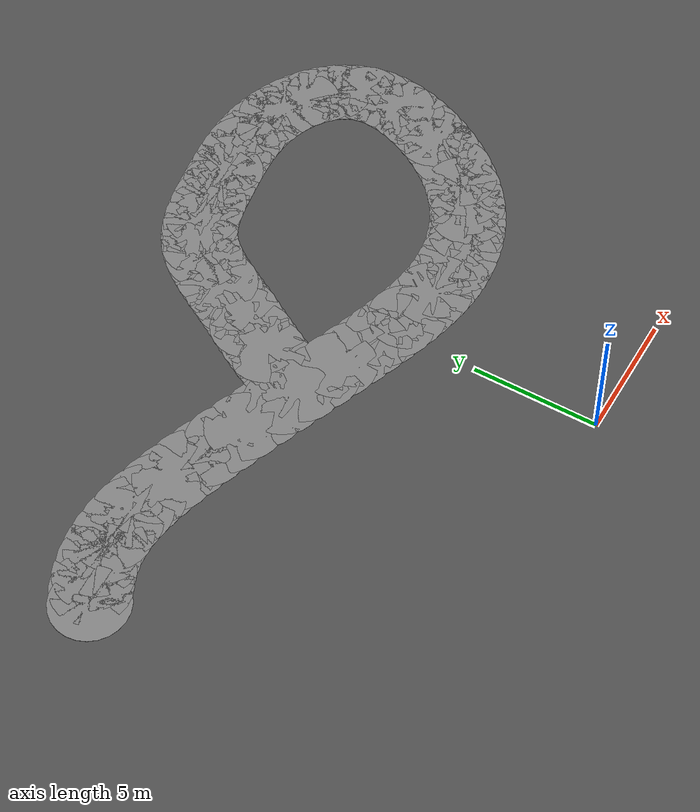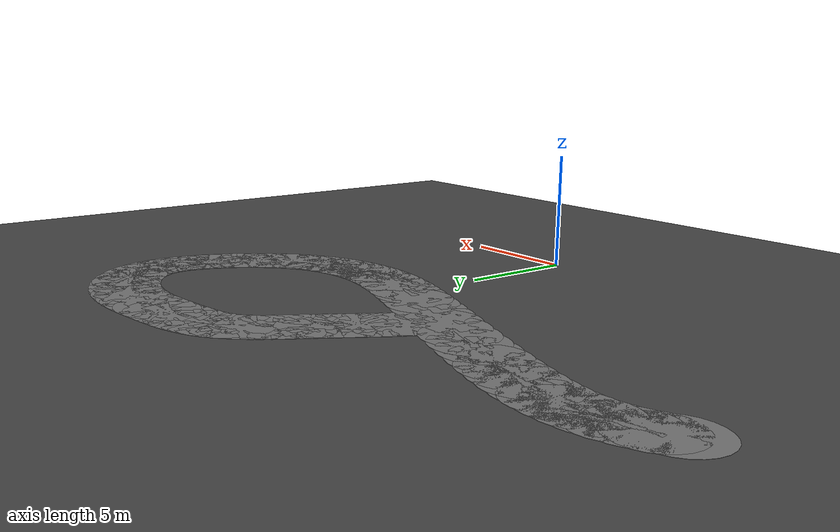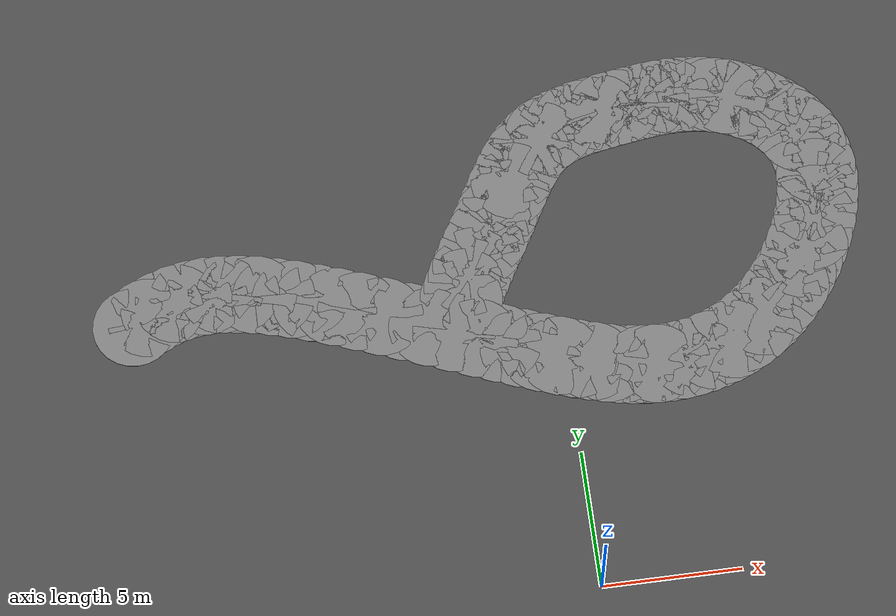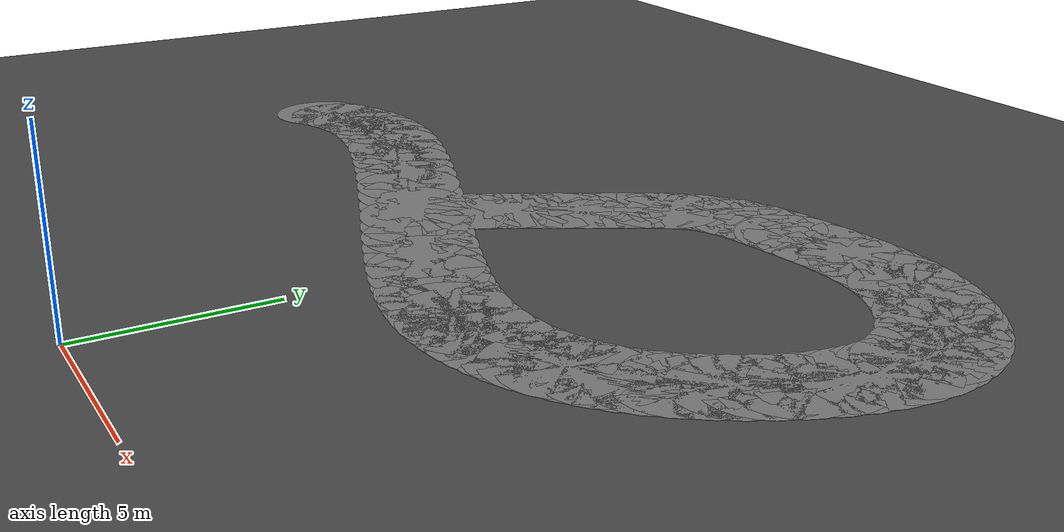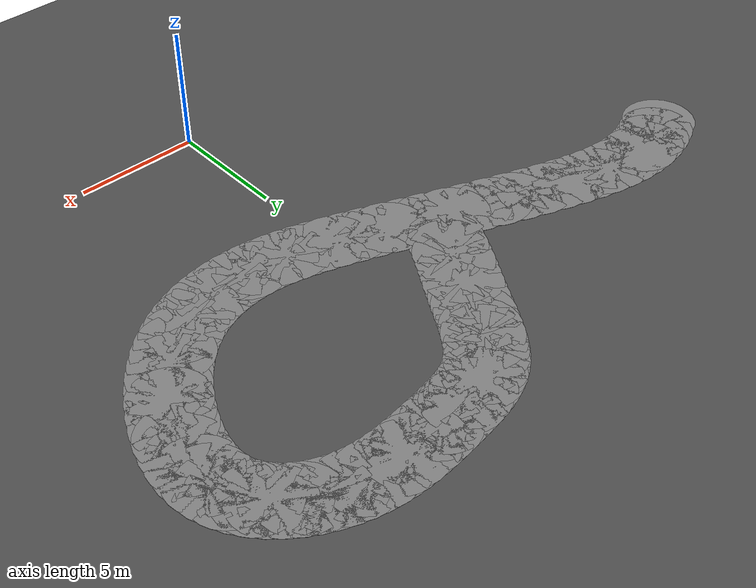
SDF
<sdf version="1.6">
 <world name="mirror_edge_world">
  <model name="ground_plane">
   <static>true</static>
   <link name="link">
    <collision name="collision">
     <geometry><plane><normal>0 0 1</normal><size>100 100</size></plane></geometry>
    </collision>
    <visual name="visual">
     <geometry><plane><normal>0 0 1</normal><size>100 100</size></plane></geometry>
     <material>
      <ambient>0.3 0.3 0.3 1</ambient>
      <diffuse>0.3 0.3 0.3 1</diffuse>
      <specular>0.5 0.5 0.5 1</specular>
      <emissive>0 0 0 1</emissive>
     </material>
    </visual>
   </link>
  </model>
  <model name="corridor_hex_298_0">
   <static>true</static>
   <link name="link">
    <pose>-3.468 11.369 0.005 0 0 0</pose>
    <visual name="visual">
     <geometry><cylinder><radius>1.5</radius><length>0.01</length><segments>6</segments></cylinder></geometry>
     <material>
      <ambient>0.5 0.5 0.5 1</ambient>
      <diffuse>0.5 0.5 0.5 1</diffuse>
      <specular>0.3 0.3 0.3 1</specular>
      <emissive>0 0 0 1</emissive>
     </material>
    </visual>
   </link>
  </model>
  <model name="corridor_hex_299_0">
   <static>true</static>
   <link name="link">
    <pose>-3.27 11.772 0.005 0 0 0</pose>
    <visual name="visual">
     <geometry><cylinder><radius>1.5</radius><length>0.01</length><segments>6</segments></cylinder></geometry>
     <material>
      <ambient>0.5 0.5 0.5 1</ambient>
      <diffuse>0.5 0.5 0.5 1</diffuse>
      <specular>0.3 0.3 0.3 1</specular>
      <emissive>0 0 0 1</emissive>
     </material>
    </visual>
   </link>
  </model>
  <model name="corridor_hex_300_0">
   <static>true</static>
   <link name="link">
    <pose>-3.063 12.164 0.005 0 0 0</pose>
    <visual name="visual">
     <geometry><cylinder><radius>1.5</radius><length>0.01</length><segments>6</segments></cylinder></geometry>
     <material>
      <ambient>0.5 0.5 0.5 1</ambient>
      <diffuse>0.5 0.5 0.5 1</diffuse>
      <specular>0.3 0.3 0.3 1</specular>
      <emissive>0 0 0 1</emissive>
     </material>
    </visual>
   </link>
  </model>
  <model name="corridor_hex_301_0">
   <static>true</static>
   <link name="link">
    <pose>-2.851 12.546 0.005 0 0 0</pose>
    <visual name="visual">
     <geometry><cylinder><radius>1.5</radius><length>0.01</length><segments>6</segments></cylinder></geometry>
     <material>
      <ambient>0.5 0.5 0.5 1</ambient>
      <diffuse>0.5 0.5 0.5 1</diffuse>
      <specular>0.3 0.3 0.3 1</specular>
      <emissive>0 0 0 1</emissive>
     </material>
    </visual>
   </link>
  </model>
  <model name="corridor_hex_302_0">
   <static>true</static>
   <link name="link">
    <pose>-2.635 12.919 0.005 0 0 0</pose>
    <visual name="visual">
     <geometry><cylinder><radius>1.5</radius><length>0.01</length><segments>6</segments></cylinder></geometry>
     <material>
      <ambient>0.5 0.5 0.5 1</ambient>
      <diffuse>0.5 0.5 0.5 1</diffuse>
      <specular>0.3 0.3 0.3 1</specular>
      <emissive>0 0 0 1</emissive>
     </material>
    </visual>
   </link>
  </model>
  <model name="corridor_hex_303_0">
   <static>true</static>
   <link name="link">
    <pose>-2.42 13.285 0.005 0 0 0</pose>
    <visual name="visual">
     <geometry><cylinder><radius>1.5</radius><length>0.01</length><segments>6</segments></cylinder></geometry>
     <material>
      <ambient>0.5 0.5 0.5 1</ambient>
      <diffuse>0.5 0.5 0.5 1</diffuse>
      <specular>0.3 0.3 0.3 1</specular>
      <emissive>0 0 0 1</emissive>
     </material>
    </visual>
   </link>
  </model>
  <model name="corridor_hex_304_0">
   <static>true</static>
   <link name="link">
    <pose>-2.207 13.644 0.005 0 0 0</pose>
    <visual name="visual">
     <geometry><cylinder><radius>1.5</radius><length>0.01</length><segments>6</segments></cylinder></geometry>
     <material>
      <ambient>0.5 0.5 0.5 1</ambient>
      <diffuse>0.5 0.5 0.5 1</diffuse>
      <specular>0.3 0.3 0.3 1</specular>
      <emissive>0 0 0 1</emissive>
     </material>
    </visual>
   </link>
  </model>
  <model name="corridor_hex_305_0">
   <static>true</static>
   <link name="link">
    <pose>-2.0 14.0 0.005 0 0 0</pose>
    <visual name="visual">
     <geometry><cylinder><radius>1.5</radius><length>0.01</length><segments>6</segments></cylinder></geometry>
     <material>
      <ambient>0.5 0.5 0.5 1</ambient>
      <diffuse>0.5 0.5 0.5 1</diffuse>
      <specular>0.3 0.3 0.3 1</specular>
      <emissive>0 0 0 1</emissive>
     </material>
    </visual>
   </link>
  </model>
  <model name="corridor_hex_306_0">
   <static>true</static>
   <link name="link">
    <pose>-1.801 14.352 0.005 0 0 0</pose>
    <visual name="visual">
     <geometry><cylinder><radius>1.5</radius><length>0.01</length><segments>6</segments></cylinder></geometry>
     <material>
      <ambient>0.5 0.5 0.5 1</ambient>
      <diffuse>0.5 0.5 0.5 1</diffuse>
      <specular>0.3 0.3 0.3 1</specular>
      <emissive>0 0 0 1</emissive>
     </material>
    </visual>
   </link>
  </model>
  <model name="corridor_hex_307_0">
   <static>true</static>
   <link name="link">
    <pose>-1.609 14.698 0.005 0 0 0</pose>
    <visual name="visual">
     <geometry><cylinder><radius>1.5</radius><length>0.01</length><segments>6</segments></cylinder></geometry>
     <material>
      <ambient>0.5 0.5 0.5 1</ambient>
      <diffuse>0.5 0.5 0.5 1</diffuse>
      <specular>0.3 0.3 0.3 1</specular>
      <emissive>0 0 0 1</emissive>
     </material>
    </visual>
   </link>
  </model>
  <model name="corridor_hex_308_0">
   <static>true</static>
   <link name="link">
    <pose>-1.421 15.037 0.005 0 0 0</pose>
    <visual name="visual">
     <geometry><cylinder><radius>1.5</radius><length>0.01</length><segments>6</segments></cylinder></geometry>
     <material>
      <ambient>0.5 0.5 0.5 1</ambient>
      <diffuse>0.5 0.5 0.5 1</diffuse>
      <specular>0.3 0.3 0.3 1</specular>
      <emissive>0 0 0 1</emissive>
     </material>
    </visual>
   </link>
  </model>
  <model name="corridor_hex_309_0">
   <static>true</static>
   <link name="link">
    <pose>-1.235 15.364 0.005 0 0 0</pose>
    <visual name="visual">
     <geometry><cylinder><radius>1.5</radius><length>0.01</length><segments>6</segments></cylinder></geometry>
     <material>
      <ambient>0.5 0.5 0.5 1</ambient>
      <diffuse>0.5 0.5 0.5 1</diffuse>
      <specular>0.3 0.3 0.3 1</specular>
      <emissive>0 0 0 1</emissive>
     </material>
    </visual>
   </link>
  </model>
  <model name="corridor_hex_310_0">
   <static>true</static>
   <link name="link">
    <pose>-1.049 15.679 0.005 0 0 0</pose>
    <visual name="visual">
     <geometry><cylinder><radius>1.5</radius><length>0.01</length><segments>6</segments></cylinder></geometry>
     <material>
      <ambient>0.5 0.5 0.5 1</ambient>
      <diffuse>0.5 0.5 0.5 1</diffuse>
      <specular>0.3 0.3 0.3 1</specular>
      <emissive>0 0 0 1</emissive>
     </material>
    </visual>
   </link>
  </model>
  <model name="corridor_hex_311_0">
   <static>true</static>
   <link name="link">
    <pose>-0.86 15.978 0.005 0 0 0</pose>
    <visual name="visual">
     <geometry><cylinder><radius>1.5</radius><length>0.01</length><segments>6</segments></cylinder></geometry>
     <material>
      <ambient>0.5 0.5 0.5 1</ambient>
      <diffuse>0.5 0.5 0.5 1</diffuse>
      <specular>0.3 0.3 0.3 1</specular>
      <emissive>0 0 0 1</emissive>
     </material>
    </visual>
   </link>
  </model>
  <model name="corridor_hex_312_0">
   <static>true</static>
   <link name="link">
    <pose>-0.667 16.259 0.005 0 0 0</pose>
    <visual name="visual">
     <geometry><cylinder><radius>1.5</radius><length>0.01</length><segments>6</segments></cylinder></geometry>
     <material>
      <ambient>0.5 0.5 0.5 1</ambient>
      <diffuse>0.5 0.5 0.5 1</diffuse>
      <specular>0.3 0.3 0.3 1</specular>
      <emissive>0 0 0 1</emissive>
     </material>
    </visual>
   </link>
  </model>
  <model name="corridor_hex_313_0">
   <static>true</static>
   <link name="link">
    <pose>-0.467 16.519 0.005 0 0 0</pose>
    <visual name="visual">
     <geometry><cylinder><radius>1.5</radius><length>0.01</length><segments>6</segments></cylinder></geometry>
     <material>
      <ambient>0.5 0.5 0.5 1</ambient>
      <diffuse>0.5 0.5 0.5 1</diffuse>
      <specular>0.3 0.3 0.3 1</specular>
      <emissive>0 0 0 1</emissive>
     </material>
    </visual>
   </link>
  </model>
  <model name="corridor_hex_314_0">
   <static>true</static>
   <link name="link">
    <pose>-0.258 16.756 0.005 0 0 0</pose>
    <visual name="visual">
     <geometry><cylinder><radius>1.5</radius><length>0.01</length><segments>6</segments></cylinder></geometry>
     <material>
      <ambient>0.5 0.5 0.5 1</ambient>
      <diffuse>0.5 0.5 0.5 1</diffuse>
      <specular>0.3 0.3 0.3 1</specular>
      <emissive>0 0 0 1</emissive>
     </material>
    </visual>
   </link>
  </model>
  <model name="corridor_hex_315_0">
   <static>true</static>
   <link name="link">
    <pose>-0.038 16.967 0.005 0 0 0</pose>
    <visual name="visual">
     <geometry><cylinder><radius>1.5</radius><length>0.01</length><segments>6</segments></cylinder></geometry>
     <material>
      <ambient>0.5 0.5 0.5 1</ambient>
      <diffuse>0.5 0.5 0.5 1</diffuse>
      <specular>0.3 0.3 0.3 1</specular>
      <emissive>0 0 0 1</emissive>
     </material>
    </visual>
   </link>
  </model>
  <model name="corridor_hex_316_0">
   <static>true</static>
   <link name="link">
    <pose>0.196 17.151 0.005 0 0 0</pose>
    <visual name="visual">
     <geometry><cylinder><radius>1.5</radius><length>0.01</length><segments>6</segments></cylinder></geometry>
     <material>
      <ambient>0.5 0.5 0.5 1</ambient>
      <diffuse>0.5 0.5 0.5 1</diffuse>
      <specular>0.3 0.3 0.3 1</specular>
      <emissive>0 0 0 1</emissive>
     </material>
    </visual>
   </link>
  </model>
  <model name="corridor_hex_317_0">
   <static>true</static>
   <link name="link">
    <pose>0.443 17.308 0.005 0 0 0</pose>
    <visual name="visual">
     <geometry><cylinder><radius>1.5</radius><length>0.01</length><segments>6</segments></cylinder></geometry>
     <material>
      <ambient>0.5 0.5 0.5 1</ambient>
      <diffuse>0.5 0.5 0.5 1</diffuse>
      <specular>0.3 0.3 0.3 1</specular>
      <emissive>0 0 0 1</emissive>
     </material>
    </visual>
   </link>
  </model>
  <model name="corridor_hex_318_0">
   <static>true</static>
   <link name="link">
    <pose>0.704 17.442 0.005 0 0 0</pose>
    <visual name="visual">
     <geometry><cylinder><radius>1.5</radius><length>0.01</length><segments>6</segments></cylinder></geometry>
     <material>
      <ambient>0.5 0.5 0.5 1</ambient>
      <diffuse>0.5 0.5 0.5 1</diffuse>
      <specular>0.3 0.3 0.3 1</specular>
      <emissive>0 0 0 1</emissive>
     </material>
    </visual>
   </link>
  </model>
  <model name="corridor_hex_319_0">
   <static>true</static>
   <link name="link">
    <pose>0.978 17.556 0.005 0 0 0</pose>
    <visual name="visual">
     <geometry><cylinder><radius>1.5</radius><length>0.01</length><segments>6</segments></cylinder></geometry>
     <material>
      <ambient>0.5 0.5 0.5 1</ambient>
      <diffuse>0.5 0.5 0.5 1</diffuse>
      <specular>0.3 0.3 0.3 1</specular>
      <emissive>0 0 0 1</emissive>
     </material>
    </visual>
   </link>
  </model>
  <model name="corridor_hex_320_0">
   <static>true</static>
   <link name="link">
    <pose>1.265 17.653 0.005 0 0 0</pose>
    <visual name="visual">
     <geometry><cylinder><radius>1.5</radius><length>0.01</length><segments>6</segments></cylinder></geometry>
     <material>
      <ambient>0.5 0.5 0.5 1</ambient>
      <diffuse>0.5 0.5 0.5 1</diffuse>
      <specular>0.3 0.3 0.3 1</specular>
      <emissive>0 0 0 1</emissive>
     </material>
    </visual>
   </link>
  </model>
  <model name="corridor_hex_321_0">
   <static>true</static>
   <link name="link">
    <pose>1.564 17.735 0.005 0 0 0</pose>
    <visual name="visual">
     <geometry><cylinder><radius>1.5</radius><length>0.01</length><segments>6</segments></cylinder></geometry>
     <material>
      <ambient>0.5 0.5 0.5 1</ambient>
      <diffuse>0.5 0.5 0.5 1</diffuse>
      <specular>0.3 0.3 0.3 1</specular>
      <emissive>0 0 0 1</emissive>
     </material>
    </visual>
   </link>
  </model>
  <model name="corridor_hex_322_0">
   <static>true</static>
   <link name="link">
    <pose>1.876 17.806 0.005 0 0 0</pose>
    <visual name="visual">
     <geometry><cylinder><radius>1.5</radius><length>0.01</length><segments>6</segments></cylinder></geometry>
     <material>
      <ambient>0.5 0.5 0.5 1</ambient>
      <diffuse>0.5 0.5 0.5 1</diffuse>
      <specular>0.3 0.3 0.3 1</specular>
      <emissive>0 0 0 1</emissive>
     </material>
    </visual>
   </link>
  </model>
  <model name="corridor_hex_323_0">
   <static>true</static>
   <link name="link">
    <pose>2.2 17.869 0.005 0 0 0</pose>
    <visual name="visual">
     <geometry><cylinder><radius>1.5</radius><length>0.01</length><segments>6</segments></cylinder></geometry>
     <material>
      <ambient>0.5 0.5 0.5 1</ambient>
      <diffuse>0.5 0.5 0.5 1</diffuse>
      <specular>0.3 0.3 0.3 1</specular>
      <emissive>0 0 0 1</emissive>
     </material>
    </visual>
   </link>
  </model>
  <model name="corridor_hex_324_0">
   <static>true</static>
   <link name="link">
    <pose>2.535 17.926 0.005 0 0 0</pose>
    <visual name="visual">
     <geometry><cylinder><radius>1.5</radius><length>0.01</length><segments>6</segments></cylinder></geometry>
     <material>
      <ambient>0.5 0.5 0.5 1</ambient>
      <diffuse>0.5 0.5 0.5 1</diffuse>
      <specular>0.3 0.3 0.3 1</specular>
      <emissive>0 0 0 1</emissive>
     </material>
    </visual>
   </link>
  </model>
  <model name="corridor_hex_325_0">
   <static>true</static>
   <link name="link">
    <pose>2.882 17.982 0.005 0 0 0</pose>
    <visual name="visual">
     <geometry><cylinder><radius>1.5</radius><length>0.01</length><segments>6</segments></cylinder></geometry>
     <material>
      <ambient>0.5 0.5 0.5 1</ambient>
      <diffuse>0.5 0.5 0.5 1</diffuse>
      <specular>0.3 0.3 0.3 1</specular>
      <emissive>0 0 0 1</emissive>
     </material>
    </visual>
   </link>
  </model>
  <model name="corridor_hex_326_0">
   <static>true</static>
   <link name="link">
    <pose>3.24 18.037 0.005 0 0 0</pose>
    <visual name="visual">
     <geometry><cylinder><radius>1.5</radius><length>0.01</length><segments>6</segments></cylinder></geometry>
     <material>
      <ambient>0.5 0.5 0.5 1</ambient>
      <diffuse>0.5 0.5 0.5 1</diffuse>
      <specular>0.3 0.3 0.3 1</specular>
      <emissive>0 0 0 1</emissive>
     </material>
    </visual>
   </link>
  </model>
  <model name="corridor_hex_327_0">
   <static>true</static>
   <link name="link">
    <pose>3.608 18.092 0.005 0 0 0</pose>
    <visual name="visual">
     <geometry><cylinder><radius>1.5</radius><length>0.01</length><segments>6</segments></cylinder></geometry>
     <material>
      <ambient>0.5 0.5 0.5 1</ambient>
      <diffuse>0.5 0.5 0.5 1</diffuse>
      <specular>0.3 0.3 0.3 1</specular>
      <emissive>0 0 0 1</emissive>
     </material>
    </visual>
   </link>
  </model>
  <model name="corridor_hex_328_0">
   <static>true</static>
   <link name="link">
    <pose>3.985 18.142 0.005 0 0 0</pose>
    <visual name="visual">
     <geometry><cylinder><radius>1.5</radius><length>0.01</length><segments>6</segments></cylinder></geometry>
     <material>
      <ambient>0.5 0.5 0.5 1</ambient>
      <diffuse>0.5 0.5 0.5 1</diffuse>
      <specular>0.3 0.3 0.3 1</specular>
      <emissive>0 0 0 1</emissive>
     </material>
    </visual>
   </link>
  </model>
  <model name="corridor_hex_329_0">
   <static>true</static>
   <link name="link">
    <pose>4.37 18.184 0.005 0 0 0</pose>
    <visual name="visual">
     <geometry><cylinder><radius>1.5</radius><length>0.01</length><segments>6</segments></cylinder></geometry>
     <material>
      <ambient>0.5 0.5 0.5 1</ambient>
      <diffuse>0.5 0.5 0.5 1</diffuse>
      <specular>0.3 0.3 0.3 1</specular>
      <emissive>0 0 0 1</emissive>
     </material>
    </visual>
   </link>
  </model>
  <model name="corridor_hex_330_0">
   <static>true</static>
   <link name="link">
    <pose>4.763 18.214 0.005 0 0 0</pose>
    <visual name="visual">
     <geometry><cylinder><radius>1.5</radius><length>0.01</length><segments>6</segments></cylinder></geometry>
     <material>
      <ambient>0.5 0.5 0.5 1</ambient>
      <diffuse>0.5 0.5 0.5 1</diffuse>
      <specular>0.3 0.3 0.3 1</specular>
      <emissive>0 0 0 1</emissive>
     </material>
    </visual>
   </link>
  </model>
  <model name="corridor_hex_331_0">
   <static>true</static>
   <link name="link">
    <pose>5.161 18.229 0.005 0 0 0</pose>
    <visual name="visual">
     <geometry><cylinder><radius>1.5</radius><length>0.01</length><segments>6</segments></cylinder></geometry>
     <material>
      <ambient>0.5 0.5 0.5 1</ambient>
      <diffuse>0.5 0.5 0.5 1</diffuse>
      <specular>0.3 0.3 0.3 1</specular>
      <emissive>0 0 0 1</emissive>
     </material>
    </visual>
   </link>
  </model>
  <model name="corridor_hex_332_0">
   <static>true</static>
   <link name="link">
    <pose>5.565 18.224 0.005 0 0 0</pose>
    <visual name="visual">
     <geometry><cylinder><radius>1.5</radius><length>0.01</length><segments>6</segments></cylinder></geometry>
     <material>
      <ambient>0.5 0.5 0.5 1</ambient>
      <diffuse>0.5 0.5 0.5 1</diffuse>
      <specular>0.3 0.3 0.3 1</specular>
      <emissive>0 0 0 1</emissive>
     </material>
    </visual>
   </link>
  </model>
  <model name="corridor_hex_333_0">
   <static>true</static>
   <link name="link">
    <pose>5.972 18.196 0.005 0 0 0</pose>
    <visual name="visual">
     <geometry><cylinder><radius>1.5</radius><length>0.01</length><segments>6</segments></cylinder></geometry>
     <material>
      <ambient>0.5 0.5 0.5 1</ambient>
      <diffuse>0.5 0.5 0.5 1</diffuse>
      <specular>0.3 0.3 0.3 1</specular>
      <emissive>0 0 0 1</emissive>
     </material>
    </visual>
   </link>
  </model>
  <model name="corridor_hex_334_0">
   <static>true</static>
   <link name="link">
    <pose>6.382 18.141 0.005 0 0 0</pose>
    <visual name="visual">
     <geometry><cylinder><radius>1.5</radius><length>0.01</length><segments>6</segments></cylinder></geometry>
     <material>
      <ambient>0.5 0.5 0.5 1</ambient>
      <diffuse>0.5 0.5 0.5 1</diffuse>
      <specular>0.3 0.3 0.3 1</specular>
      <emissive>0 0 0 1</emissive>
     </material>
    </visual>
   </link>
  </model>
  <model name="corridor_hex_335_0">
   <static>true</static>
   <link name="link">
    <pose>6.794 18.055 0.005 0 0 0</pose>
    <visual name="visual">
     <geometry><cylinder><radius>1.5</radius><length>0.01</length><segments>6</segments></cylinder></geometry>
     <material>
      <ambient>0.5 0.5 0.5 1</ambient>
      <diffuse>0.5 0.5 0.5 1</diffuse>
      <specular>0.3 0.3 0.3 1</specular>
      <emissive>0 0 0 1</emissive>
     </material>
    </visual>
   </link>
  </model>
  <model name="corridor_hex_336_0">
   <static>true</static>
   <link name="link">
    <pose>7.206 17.936 0.005 0 0 0</pose>
    <visual name="visual">
     <geometry><cylinder><radius>1.5</radius><length>0.01</length><segments>6</segments></cylinder></geometry>
     <material>
      <ambient>0.5 0.5 0.5 1</ambient>
      <diffuse>0.5 0.5 0.5 1</diffuse>
      <specular>0.3 0.3 0.3 1</specular>
      <emissive>0 0 0 1</emissive>
     </material>
    </visual>
   </link>
  </model>
  <model name="corridor_hex_337_0">
   <static>true</static>
   <link name="link">
    <pose>7.615 17.78 0.005 0 0 0</pose>
    <visual name="visual">
     <geometry><cylinder><radius>1.5</radius><length>0.01</length><segments>6</segments></cylinder></geometry>
     <material>
      <ambient>0.5 0.5 0.5 1</ambient>
      <diffuse>0.5 0.5 0.5 1</diffuse>
      <specular>0.3 0.3 0.3 1</specular>
      <emissive>0 0 0 1</emissive>
     </material>
    </visual>
   </link>
  </model>
  <model name="corridor_hex_338_0">
   <static>true</static>
   <link name="link">
    <pose>8.014 17.589 0.005 0 0 0</pose>
    <visual name="visual">
     <geometry><cylinder><radius>1.5</radius><length>0.01</length><segments>6</segments></cylinder></geometry>
     <material>
      <ambient>0.5 0.5 0.5 1</ambient>
      <diffuse>0.5 0.5 0.5 1</diffuse>
      <specular>0.3 0.3 0.3 1</specular>
      <emissive>0 0 0 1</emissive>
     </material>
    </visual>
   </link>
  </model>
  <model name="corridor_hex_339_0">
   <static>true</static>
   <link name="link">
    <pose>8.395 17.364 0.005 0 0 0</pose>
    <visual name="visual">
     <geometry><cylinder><radius>1.5</radius><length>0.01</length><segments>6</segments></cylinder></geometry>
     <material>
      <ambient>0.5 0.5 0.5 1</ambient>
      <diffuse>0.5 0.5 0.5 1</diffuse>
      <specular>0.3 0.3 0.3 1</specular>
      <emissive>0 0 0 1</emissive>
     </material>
    </visual>
   </link>
  </model>
  <model name="corridor_hex_340_0">
   <static>true</static>
   <link name="link">
    <pose>8.753 17.103 0.005 0 0 0</pose>
    <visual name="visual">
     <geometry><cylinder><radius>1.5</radius><length>0.01</length><segments>6</segments></cylinder></geometry>
     <material>
      <ambient>0.5 0.5 0.5 1</ambient>
      <diffuse>0.5 0.5 0.5 1</diffuse>
      <specular>0.3 0.3 0.3 1</specular>
      <emissive>0 0 0 1</emissive>
     </material>
    </visual>
   </link>
  </model>
  <model name="corridor_hex_341_0">
   <static>true</static>
   <link name="link">
    <pose>9.081 16.809 0.005 0 0 0</pose>
    <visual name="visual">
     <geometry><cylinder><radius>1.5</radius><length>0.01</length><segments>6</segments></cylinder></geometry>
     <material>
      <ambient>0.5 0.5 0.5 1</ambient>
      <diffuse>0.5 0.5 0.5 1</diffuse>
      <specular>0.3 0.3 0.3 1</specular>
      <emissive>0 0 0 1</emissive>
     </material>
    </visual>
   </link>
  </model>
  <model name="corridor_hex_342_0">
   <static>true</static>
   <link name="link">
    <pose>9.37 16.481 0.005 0 0 0</pose>
    <visual name="visual">
     <geometry><cylinder><radius>1.5</radius><length>0.01</length><segments>6</segments></cylinder></geometry>
     <material>
      <ambient>0.5 0.5 0.5 1</ambient>
      <diffuse>0.5 0.5 0.5 1</diffuse>
      <specular>0.3 0.3 0.3 1</specular>
      <emissive>0 0 0 1</emissive>
     </material>
    </visual>
   </link>
  </model>
  <model name="corridor_hex_343_0">
   <static>true</static>
   <link name="link">
    <pose>9.615 16.12 0.005 0 0 0</pose>
    <visual name="visual">
     <geometry><cylinder><radius>1.5</radius><length>0.01</length><segments>6</segments></cylinder></geometry>
     <material>
      <ambient>0.5 0.5 0.5 1</ambient>
      <diffuse>0.5 0.5 0.5 1</diffuse>
      <specular>0.3 0.3 0.3 1</specular>
      <emissive>0 0 0 1</emissive>
     </material>
    </visual>
   </link>
  </model>
  <model name="corridor_hex_344_0">
   <static>true</static>
   <link name="link">
    <pose>9.809 15.727 0.005 0 0 0</pose>
    <visual name="visual">
     <geometry><cylinder><radius>1.5</radius><length>0.01</length><segments>6</segments></cylinder></geometry>
     <material>
      <ambient>0.5 0.5 0.5 1</ambient>
      <diffuse>0.5 0.5 0.5 1</diffuse>
      <specular>0.3 0.3 0.3 1</specular>
      <emissive>0 0 0 1</emissive>
     </material>
    </visual>
   </link>
  </model>
  <model name="corridor_hex_345_0">
   <static>true</static>
   <link name="link">
    <pose>9.945 15.301 0.005 0 0 0</pose>
    <visual name="visual">
     <geometry><cylinder><radius>1.5</radius><length>0.01</length><segments>6</segments></cylinder></geometry>
     <material>
      <ambient>0.5 0.5 0.5 1</ambient>
      <diffuse>0.5 0.5 0.5 1</diffuse>
      <specular>0.3 0.3 0.3 1</specular>
      <emissive>0 0 0 1</emissive>
     </material>
    </visual>
   </link>
  </model>
  <model name="corridor_hex_346_0">
   <static>true</static>
   <link name="link">
    <pose>10.016 14.844 0.005 0 0 0</pose>
    <visual name="visual">
     <geometry><cylinder><radius>1.5</radius><length>0.01</length><segments>6</segments></cylinder></geometry>
     <material>
      <ambient>0.5 0.5 0.5 1</ambient>
      <diffuse>0.5 0.5 0.5 1</diffuse>
      <specular>0.3 0.3 0.3 1</specular>
      <emissive>0 0 0 1</emissive>
     </material>
    </visual>
   </link>
  </model>
  <model name="corridor_hex_347_0">
   <static>true</static>
   <link name="link">
    <pose>10.02 14.359 0.005 0 0 0</pose>
    <visual name="visual">
     <geometry><cylinder><radius>1.5</radius><length>0.01</length><segments>6</segments></cylinder></geometry>
     <material>
      <ambient>0.5 0.5 0.5 1</ambient>
      <diffuse>0.5 0.5 0.5 1</diffuse>
      <specular>0.3 0.3 0.3 1</specular>
      <emissive>0 0 0 1</emissive>
     </material>
    </visual>
   </link>
  </model>
  <model name="corridor_hex_348_0">
   <static>true</static>
   <link name="link">
    <pose>9.962 13.852 0.005 0 0 0</pose>
    <visual name="visual">
     <geometry><cylinder><radius>1.5</radius><length>0.01</length><segments>6</segments></cylinder></geometry>
     <material>
      <ambient>0.5 0.5 0.5 1</ambient>
      <diffuse>0.5 0.5 0.5 1</diffuse>
      <specular>0.3 0.3 0.3 1</specular>
      <emissive>0 0 0 1</emissive>
     </material>
    </visual>
   </link>
  </model>
  <model name="corridor_hex_349_0">
   <static>true</static>
   <link name="link">
    <pose>9.847 13.331 0.005 0 0 0</pose>
    <visual name="visual">
     <geometry><cylinder><radius>1.5</radius><length>0.01</length><segments>6</segments></cylinder></geometry>
     <material>
      <ambient>0.5 0.5 0.5 1</ambient>
      <diffuse>0.5 0.5 0.5 1</diffuse>
      <specular>0.3 0.3 0.3 1</specular>
      <emissive>0 0 0 1</emissive>
     </material>
    </visual>
   </link>
  </model>
  <model name="corridor_hex_350_0">
   <static>true</static>
   <link name="link">
    <pose>9.682 12.804 0.005 0 0 0</pose>
    <visual name="visual">
     <geometry><cylinder><radius>1.5</radius><length>0.01</length><segments>6</segments></cylinder></geometry>
     <material>
      <ambient>0.5 0.5 0.5 1</ambient>
      <diffuse>0.5 0.5 0.5 1</diffuse>
      <specular>0.3 0.3 0.3 1</specular>
      <emissive>0 0 0 1</emissive>
     </material>
    </visual>
   </link>
  </model>
  <model name="corridor_hex_351_0">
   <static>true</static>
   <link name="link">
    <pose>9.472 12.279 0.005 0 0 0</pose>
    <visual name="visual">
     <geometry><cylinder><radius>1.5</radius><length>0.01</length><segments>6</segments></cylinder></geometry>
     <material>
      <ambient>0.5 0.5 0.5 1</ambient>
      <diffuse>0.5 0.5 0.5 1</diffuse>
      <specular>0.3 0.3 0.3 1</specular>
      <emissive>0 0 0 1</emissive>
     </material>
    </visual>
   </link>
  </model>
  <model name="corridor_hex_352_0">
   <static>true</static>
   <link name="link">
    <pose>9.222 11.762 0.005 0 0 0</pose>
    <visual name="visual">
     <geometry><cylinder><radius>1.5</radius><length>0.01</length><segments>6</segments></cylinder></geometry>
     <material>
      <ambient>0.5 0.5 0.5 1</ambient>
      <diffuse>0.5 0.5 0.5 1</diffuse>
      <specular>0.3 0.3 0.3 1</specular>
      <emissive>0 0 0 1</emissive>
     </material>
    </visual>
   </link>
  </model>
  <model name="corridor_hex_353_0">
   <static>true</static>
   <link name="link">
    <pose>8.938 11.262 0.005 0 0 0</pose>
    <visual name="visual">
     <geometry><cylinder><radius>1.5</radius><length>0.01</length><segments>6</segments></cylinder></geometry>
     <material>
      <ambient>0.5 0.5 0.5 1</ambient>
      <diffuse>0.5 0.5 0.5 1</diffuse>
      <specular>0.3 0.3 0.3 1</specular>
      <emissive>0 0 0 1</emissive>
     </material>
    </visual>
   </link>
  </model>
  <model name="corridor_hex_354_0">
   <static>true</static>
   <link name="link">
    <pose>8.626 10.786 0.005 0 0 0</pose>
    <visual name="visual">
     <geometry><cylinder><radius>1.5</radius><length>0.01</length><segments>6</segments></cylinder></geometry>
     <material>
      <ambient>0.5 0.5 0.5 1</ambient>
      <diffuse>0.5 0.5 0.5 1</diffuse>
      <specular>0.3 0.3 0.3 1</specular>
      <emissive>0 0 0 1</emissive>
     </material>
    </visual>
   </link>
  </model>
  <model name="corridor_hex_355_0">
   <static>true</static>
   <link name="link">
    <pose>8.292 10.341 0.005 0 0 0</pose>
    <visual name="visual">
     <geometry><cylinder><radius>1.5</radius><length>0.01</length><segments>6</segments></cylinder></geometry>
     <material>
      <ambient>0.5 0.5 0.5 1</ambient>
      <diffuse>0.5 0.5 0.5 1</diffuse>
      <specular>0.3 0.3 0.3 1</specular>
      <emissive>0 0 0 1</emissive>
     </material>
    </visual>
   </link>
  </model>
  <model name="corridor_hex_356_0">
   <static>true</static>
   <link name="link">
    <pose>7.941 9.935 0.005 0 0 0</pose>
    <visual name="visual">
     <geometry><cylinder><radius>1.5</radius><length>0.01</length><segments>6</segments></cylinder></geometry>
     <material>
      <ambient>0.5 0.5 0.5 1</ambient>
      <diffuse>0.5 0.5 0.5 1</diffuse>
      <specular>0.3 0.3 0.3 1</specular>
      <emissive>0 0 0 1</emissive>
     </material>
    </visual>
   </link>
  </model>
  <model name="corridor_hex_357_0">
   <static>true</static>
   <link name="link">
    <pose>7.577 9.574 0.005 0 0 0</pose>
    <visual name="visual">
     <geometry><cylinder><radius>1.5</radius><length>0.01</length><segments>6</segments></cylinder></geometry>
     <material>
      <ambient>0.5 0.5 0.5 1</ambient>
      <diffuse>0.5 0.5 0.5 1</diffuse>
      <specular>0.3 0.3 0.3 1</specular>
      <emissive>0 0 0 1</emissive>
     </material>
    </visual>
   </link>
  </model>
  <model name="corridor_hex_358_0">
   <static>true</static>
   <link name="link">
    <pose>7.202 9.255 0.005 0 0 0</pose>
    <visual name="visual">
     <geometry><cylinder><radius>1.5</radius><length>0.01</length><segments>6</segments></cylinder></geometry>
     <material>
      <ambient>0.5 0.5 0.5 1</ambient>
      <diffuse>0.5 0.5 0.5 1</diffuse>
      <specular>0.3 0.3 0.3 1</specular>
      <emissive>0 0 0 1</emissive>
     </material>
    </visual>
   </link>
  </model>
  <model name="corridor_hex_359_0">
   <static>true</static>
   <link name="link">
    <pose>6.819 8.976 0.005 0 0 0</pose>
    <visual name="visual">
     <geometry><cylinder><radius>1.5</radius><length>0.01</length><segments>6</segments></cylinder></geometry>
     <material>
      <ambient>0.5 0.5 0.5 1</ambient>
      <diffuse>0.5 0.5 0.5 1</diffuse>
      <specular>0.3 0.3 0.3 1</specular>
      <emissive>0 0 0 1</emissive>
     </material>
    </visual>
   </link>
  </model>
  <model name="corridor_hex_360_0">
   <static>true</static>
   <link name="link">
    <pose>6.428 8.737 0.005 0 0 0</pose>
    <visual name="visual">
     <geometry><cylinder><radius>1.5</radius><length>0.01</length><segments>6</segments></cylinder></geometry>
     <material>
      <ambient>0.5 0.5 0.5 1</ambient>
      <diffuse>0.5 0.5 0.5 1</diffuse>
      <specular>0.3 0.3 0.3 1</specular>
      <emissive>0 0 0 1</emissive>
     </material>
    </visual>
   </link>
  </model>
  <model name="corridor_hex_361_0">
   <static>true</static>
   <link name="link">
    <pose>6.031 8.534 0.005 0 0 0</pose>
    <visual name="visual">
     <geometry><cylinder><radius>1.5</radius><length>0.01</length><segments>6</segments></cylinder></geometry>
     <material>
      <ambient>0.5 0.5 0.5 1</ambient>
      <diffuse>0.5 0.5 0.5 1</diffuse>
      <specular>0.3 0.3 0.3 1</specular>
      <emissive>0 0 0 1</emissive>
     </material>
    </visual>
   </link>
  </model>
  <model name="corridor_hex_362_0">
   <static>true</static>
   <link name="link">
    <pose>5.628 8.366 0.005 0 0 0</pose>
    <visual name="visual">
     <geometry><cylinder><radius>1.5</radius><length>0.01</length><segments>6</segments></cylinder></geometry>
     <material>
      <ambient>0.5 0.5 0.5 1</ambient>
      <diffuse>0.5 0.5 0.5 1</diffuse>
      <specular>0.3 0.3 0.3 1</specular>
      <emissive>0 0 0 1</emissive>
     </material>
    </visual>
   </link>
  </model>
  <model name="corridor_hex_363_0">
   <static>true</static>
   <link name="link">
    <pose>5.223 8.231 0.005 0 0 0</pose>
    <visual name="visual">
     <geometry><cylinder><radius>1.5</radius><length>0.01</length><segments>6</segments></cylinder></geometry>
     <material>
      <ambient>0.5 0.5 0.5 1</ambient>
      <diffuse>0.5 0.5 0.5 1</diffuse>
      <specular>0.3 0.3 0.3 1</specular>
      <emissive>0 0 0 1</emissive>
     </material>
    </visual>
   </link>
  </model>
  <model name="corridor_hex_364_0">
   <static>true</static>
   <link name="link">
    <pose>4.815 8.126 0.005 0 0 0</pose>
    <visual name="visual">
     <geometry><cylinder><radius>1.5</radius><length>0.01</length><segments>6</segments></cylinder></geometry>
     <material>
      <ambient>0.5 0.5 0.5 1</ambient>
      <diffuse>0.5 0.5 0.5 1</diffuse>
      <specular>0.3 0.3 0.3 1</specular>
      <emissive>0 0 0 1</emissive>
     </material>
    </visual>
   </link>
  </model>
  <model name="corridor_hex_365_0">
   <static>true</static>
   <link name="link">
    <pose>4.407 8.05 0.005 0 0 0</pose>
    <visual name="visual">
     <geometry><cylinder><radius>1.5</radius><length>0.01</length><segments>6</segments></cylinder></geometry>
     <material>
      <ambient>0.5 0.5 0.5 1</ambient>
      <diffuse>0.5 0.5 0.5 1</diffuse>
      <specular>0.3 0.3 0.3 1</specular>
      <emissive>0 0 0 1</emissive>
     </material>
    </visual>
   </link>
  </model>
  <model name="corridor_hex_366_0">
   <static>true</static>
   <link name="link">
    <pose>4.0 8.0 0.005 0 0 0</pose>
    <visual name="visual">
     <geometry><cylinder><radius>1.5</radius><length>0.01</length><segments>6</segments></cylinder></geometry>
     <material>
      <ambient>0.5 0.5 0.5 1</ambient>
      <diffuse>0.5 0.5 0.5 1</diffuse>
      <specular>0.3 0.3 0.3 1</specular>
      <emissive>0 0 0 1</emissive>
     </material>
    </visual>
   </link>
  </model>
  <model name="corridor_hex_367_0">
   <static>true</static>
   <link name="link">
    <pose>3.594 7.975 0.005 0 0 0</pose>
    <visual name="visual">
     <geometry><cylinder><radius>1.5</radius><length>0.01</length><segments>6</segments></cylinder></geometry>
     <material>
      <ambient>0.5 0.5 0.5 1</ambient>
      <diffuse>0.5 0.5 0.5 1</diffuse>
      <specular>0.3 0.3 0.3 1</specular>
      <emissive>0 0 0 1</emissive>
     </material>
    </visual>
   </link>
  </model>
  <model name="corridor_hex_368_0">
   <static>true</static>
   <link name="link">
    <pose>3.185 7.975 0.005 0 0 0</pose>
    <visual name="visual">
     <geometry><cylinder><radius>1.5</radius><length>0.01</length><segments>6</segments></cylinder></geometry>
     <material>
      <ambient>0.5 0.5 0.5 1</ambient>
      <diffuse>0.5 0.5 0.5 1</diffuse>
      <specular>0.3 0.3 0.3 1</specular>
      <emissive>0 0 0 1</emissive>
     </material>
    </visual>
   </link>
  </model>
  <model name="corridor_hex_369_0">
   <static>true</static>
   <link name="link">
    <pose>2.766 8.001 0.005 0 0 0</pose>
    <visual name="visual">
     <geometry><cylinder><radius>1.5</radius><length>0.01</length><segments>6</segments></cylinder></geometry>
     <material>
      <ambient>0.5 0.5 0.5 1</ambient>
      <diffuse>0.5 0.5 0.5 1</diffuse>
      <specular>0.3 0.3 0.3 1</specular>
      <emissive>0 0 0 1</emissive>
     </material>
    </visual>
   </link>
  </model>
  <model name="corridor_hex_370_0">
   <static>true</static>
   <link name="link">
    <pose>2.333 8.053 0.005 0 0 0</pose>
    <visual name="visual">
     <geometry><cylinder><radius>1.5</radius><length>0.01</length><segments>6</segments></cylinder></geometry>
     <material>
      <ambient>0.5 0.5 0.5 1</ambient>
      <diffuse>0.5 0.5 0.5 1</diffuse>
      <specular>0.3 0.3 0.3 1</specular>
      <emissive>0 0 0 1</emissive>
     </material>
    </visual>
   </link>
  </model>
  <model name="corridor_hex_371_0">
   <static>true</static>
   <link name="link">
    <pose>1.88 8.133 0.005 0 0 0</pose>
    <visual name="visual">
     <geometry><cylinder><radius>1.5</radius><length>0.01</length><segments>6</segments></cylinder></geometry>
     <material>
      <ambient>0.5 0.5 0.5 1</ambient>
      <diffuse>0.5 0.5 0.5 1</diffuse>
      <specular>0.3 0.3 0.3 1</specular>
      <emissive>0 0 0 1</emissive>
     </material>
    </visual>
   </link>
  </model>
  <model name="corridor_hex_372_0">
   <static>true</static>
   <link name="link">
    <pose>1.401 8.24 0.005 0 0 0</pose>
    <visual name="visual">
     <geometry><cylinder><radius>1.5</radius><length>0.01</length><segments>6</segments></cylinder></geometry>
     <material>
      <ambient>0.5 0.5 0.5 1</ambient>
      <diffuse>0.5 0.5 0.5 1</diffuse>
      <specular>0.3 0.3 0.3 1</specular>
      <emissive>0 0 0 1</emissive>
     </material>
    </visual>
   </link>
  </model>
  <model name="corridor_hex_373_0">
   <static>true</static>
   <link name="link">
    <pose>0.89 8.375 0.005 0 0 0</pose>
    <visual name="visual">
     <geometry><cylinder><radius>1.5</radius><length>0.01</length><segments>6</segments></cylinder></geometry>
     <material>
      <ambient>0.5 0.5 0.5 1</ambient>
      <diffuse>0.5 0.5 0.5 1</diffuse>
      <specular>0.3 0.3 0.3 1</specular>
      <emissive>0 0 0 1</emissive>
     </material>
    </visual>
   </link>
  </model>
  <model name="corridor_hex_374_0">
   <static>true</static>
   <link name="link">
    <pose>0.342 8.54 0.005 0 0 0</pose>
    <visual name="visual">
     <geometry><cylinder><radius>1.5</radius><length>0.01</length><segments>6</segments></cylinder></geometry>
     <material>
      <ambient>0.5 0.5 0.5 1</ambient>
      <diffuse>0.5 0.5 0.5 1</diffuse>
      <specular>0.3 0.3 0.3 1</specular>
      <emissive>0 0 0 1</emissive>
     </material>
    </visual>
   </link>
  </model>
  <model name="corridor_hex_375_0">
   <static>true</static>
   <link name="link">
    <pose>-0.249 8.735 0.005 0 0 0</pose>
    <visual name="visual">
     <geometry><cylinder><radius>1.5</radius><length>0.01</length><segments>6</segments></cylinder></geometry>
     <material>
      <ambient>0.5 0.5 0.5 1</ambient>
      <diffuse>0.5 0.5 0.5 1</diffuse>
      <specular>0.3 0.3 0.3 1</specular>
      <emissive>0 0 0 1</emissive>
     </material>
    </visual>
   </link>
  </model>
  <model name="corridor_hex_376_0">
   <static>true</static>
   <link name="link">
    <pose>-0.888 8.96 0.005 0 0 0</pose>
    <visual name="visual">
     <geometry><cylinder><radius>1.5</radius><length>0.01</length><segments>6</segments></cylinder></geometry>
     <material>
      <ambient>0.5 0.5 0.5 1</ambient>
      <diffuse>0.5 0.5 0.5 1</diffuse>
      <specular>0.3 0.3 0.3 1</specular>
      <emissive>0 0 0 1</emissive>
     </material>
    </visual>
   </link>
  </model>
  <model name="corridor_hex_377_0">
   <static>true</static>
   <link name="link">
    <pose>-1.58 9.215 0.005 0 0 0</pose>
    <visual name="visual">
     <geometry><cylinder><radius>1.5</radius><length>0.01</length><segments>6</segments></cylinder></geometry>
     <material>
      <ambient>0.5 0.5 0.5 1</ambient>
      <diffuse>0.5 0.5 0.5 1</diffuse>
      <specular>0.3 0.3 0.3 1</specular>
      <emissive>0 0 0 1</emissive>
     </material>
    </visual>
   </link>
  </model>
  <model name="corridor_hex_378_0">
   <static>true</static>
   <link name="link">
    <pose>-2.32 9.496 0.005 0 0 0</pose>
    <visual name="visual">
     <geometry><cylinder><radius>1.5</radius><length>0.01</length><segments>6</segments></cylinder></geometry>
     <material>
      <ambient>0.5 0.5 0.5 1</ambient>
      <diffuse>0.5 0.5 0.5 1</diffuse>
      <specular>0.3 0.3 0.3 1</specular>
      <emissive>0 0 0 1</emissive>
     </material>
    </visual>
   </link>
  </model>
  <model name="corridor_hex_379_0">
   <static>true</static>
   <link name="link">
    <pose>-3.096 9.797 0.005 0 0 0</pose>
    <visual name="visual">
     <geometry><cylinder><radius>1.5</radius><length>0.01</length><segments>6</segments></cylinder></geometry>
     <material>
      <ambient>0.5 0.5 0.5 1</ambient>
      <diffuse>0.5 0.5 0.5 1</diffuse>
      <specular>0.3 0.3 0.3 1</specular>
      <emissive>0 0 0 1</emissive>
     </material>
    </visual>
   </link>
  </model>
  <model name="corridor_hex_380_0">
   <static>true</static>
   <link name="link">
    <pose>-3.9 10.111 0.005 0 0 0</pose>
    <visual name="visual">
     <geometry><cylinder><radius>1.5</radius><length>0.01</length><segments>6</segments></cylinder></geometry>
     <material>
      <ambient>0.5 0.5 0.5 1</ambient>
      <diffuse>0.5 0.5 0.5 1</diffuse>
      <specular>0.3 0.3 0.3 1</specular>
      <emissive>0 0 0 1</emissive>
     </material>
    </visual>
   </link>
  </model>
  <model name="corridor_hex_381_0">
   <static>true</static>
   <link name="link">
    <pose>-4.721 10.433 0.005 0 0 0</pose>
    <visual name="visual">
     <geometry><cylinder><radius>1.5</radius><length>0.01</length><segments>6</segments></cylinder></geometry>
     <material>
      <ambient>0.5 0.5 0.5 1</ambient>
      <diffuse>0.5 0.5 0.5 1</diffuse>
      <specular>0.3 0.3 0.3 1</specular>
      <emissive>0 0 0 1</emissive>
     </material>
    </visual>
   </link>
  </model>
  <model name="corridor_hex_382_0">
   <static>true</static>
   <link name="link">
    <pose>-5.551 10.754 0.005 0 0 0</pose>
    <visual name="visual">
     <geometry><cylinder><radius>1.5</radius><length>0.01</length><segments>6</segments></cylinder></geometry>
     <material>
      <ambient>0.5 0.5 0.5 1</ambient>
      <diffuse>0.5 0.5 0.5 1</diffuse>
      <specular>0.3 0.3 0.3 1</specular>
      <emissive>0 0 0 1</emissive>
     </material>
    </visual>
   </link>
  </model>
  <model name="corridor_hex_383_0">
   <static>true</static>
   <link name="link">
    <pose>-6.379 11.07 0.005 0 0 0</pose>
    <visual name="visual">
     <geometry><cylinder><radius>1.5</radius><length>0.01</length><segments>6</segments></cylinder></geometry>
     <material>
      <ambient>0.5 0.5 0.5 1</ambient>
      <diffuse>0.5 0.5 0.5 1</diffuse>
      <specular>0.3 0.3 0.3 1</specular>
      <emissive>0 0 0 1</emissive>
     </material>
    </visual>
   </link>
  </model>
  <model name="corridor_hex_384_0">
   <static>true</static>
   <link name="link">
    <pose>-7.195 11.374 0.005 0 0 0</pose>
    <visual name="visual">
     <geometry><cylinder><radius>1.5</radius><length>0.01</length><segments>6</segments></cylinder></geometry>
     <material>
      <ambient>0.5 0.5 0.5 1</ambient>
      <diffuse>0.5 0.5 0.5 1</diffuse>
      <specular>0.3 0.3 0.3 1</specular>
      <emissive>0 0 0 1</emissive>
     </material>
    </visual>
   </link>
  </model>
  <model name="corridor_hex_385_0">
   <static>true</static>
   <link name="link">
    <pose>-7.99 11.659 0.005 0 0 0</pose>
    <visual name="visual">
     <geometry><cylinder><radius>1.5</radius><length>0.01</length><segments>6</segments></cylinder></geometry>
     <material>
      <ambient>0.5 0.5 0.5 1</ambient>
      <diffuse>0.5 0.5 0.5 1</diffuse>
      <specular>0.3 0.3 0.3 1</specular>
      <emissive>0 0 0 1</emissive>
     </material>
    </visual>
   </link>
  </model>
  <model name="corridor_hex_386_0">
   <static>true</static>
   <link name="link">
    <pose>-8.754 11.92 0.005 0 0 0</pose>
    <visual name="visual">
     <geometry><cylinder><radius>1.5</radius><length>0.01</length><segments>6</segments></cylinder></geometry>
     <material>
      <ambient>0.5 0.5 0.5 1</ambient>
      <diffuse>0.5 0.5 0.5 1</diffuse>
      <specular>0.3 0.3 0.3 1</specular>
      <emissive>0 0 0 1</emissive>
     </material>
    </visual>
   </link>
  </model>
  <model name="corridor_hex_387_0">
   <static>true</static>
   <link name="link">
    <pose>-9.478 12.149 0.005 0 0 0</pose>
    <visual name="visual">
     <geometry><cylinder><radius>1.5</radius><length>0.01</length><segments>6</segments></cylinder></geometry>
     <material>
      <ambient>0.5 0.5 0.5 1</ambient>
      <diffuse>0.5 0.5 0.5 1</diffuse>
      <specular>0.3 0.3 0.3 1</specular>
      <emissive>0 0 0 1</emissive>
     </material>
    </visual>
   </link>
  </model>
  <model name="corridor_hex_388_0">
   <static>true</static>
   <link name="link">
    <pose>-10.161 12.343 0.005 0 0 0</pose>
    <visual name="visual">
     <geometry><cylinder><radius>1.5</radius><length>0.01</length><segments>6</segments></cylinder></geometry>
     <material>
      <ambient>0.5 0.5 0.5 1</ambient>
      <diffuse>0.5 0.5 0.5 1</diffuse>
      <specular>0.3 0.3 0.3 1</specular>
      <emissive>0 0 0 1</emissive>
     </material>
    </visual>
   </link>
  </model>
  <model name="corridor_hex_389_0">
   <static>true</static>
   <link name="link">
    <pose>-10.808 12.497 0.005 0 0 0</pose>
    <visual name="visual">
     <geometry><cylinder><radius>1.5</radius><length>0.01</length><segments>6</segments></cylinder></geometry>
     <material>
      <ambient>0.5 0.5 0.5 1</ambient>
      <diffuse>0.5 0.5 0.5 1</diffuse>
      <specular>0.3 0.3 0.3 1</specular>
      <emissive>0 0 0 1</emissive>
     </material>
    </visual>
   </link>
  </model>
  <model name="corridor_hex_390_0">
   <static>true</static>
   <link name="link">
    <pose>-11.424 12.607 0.005 0 0 0</pose>
    <visual name="visual">
     <geometry><cylinder><radius>1.5</radius><length>0.01</length><segments>6</segments></cylinder></geometry>
     <material>
      <ambient>0.5 0.5 0.5 1</ambient>
      <diffuse>0.5 0.5 0.5 1</diffuse>
      <specular>0.3 0.3 0.3 1</specular>
      <emissive>0 0 0 1</emissive>
     </material>
    </visual>
   </link>
  </model>
  <model name="corridor_hex_391_0">
   <static>true</static>
   <link name="link">
    <pose>-12.014 12.671 0.005 0 0 0</pose>
    <visual name="visual">
     <geometry><cylinder><radius>1.5</radius><length>0.01</length><segments>6</segments></cylinder></geometry>
     <material>
      <ambient>0.5 0.5 0.5 1</ambient>
      <diffuse>0.5 0.5 0.5 1</diffuse>
      <specular>0.3 0.3 0.3 1</specular>
      <emissive>0 0 0 1</emissive>
     </material>
    </visual>
   </link>
  </model>
  <model name="corridor_hex_392_0">
   <static>true</static>
   <link name="link">
    <pose>-12.582 12.683 0.005 0 0 0</pose>
    <visual name="visual">
     <geometry><cylinder><radius>1.5</radius><length>0.01</length><segments>6</segments></cylinder></geometry>
     <material>
      <ambient>0.5 0.5 0.5 1</ambient>
      <diffuse>0.5 0.5 0.5 1</diffuse>
      <specular>0.3 0.3 0.3 1</specular>
      <emissive>0 0 0 1</emissive>
     </material>
    </visual>
   </link>
  </model>
  <model name="corridor_hex_393_0">
   <static>true</static>
   <link name="link">
    <pose>-13.133 12.639 0.005 0 0 0</pose>
    <visual name="visual">
     <geometry><cylinder><radius>1.5</radius><length>0.01</length><segments>6</segments></cylinder></geometry>
     <material>
      <ambient>0.5 0.5 0.5 1</ambient>
      <diffuse>0.5 0.5 0.5 1</diffuse>
      <specular>0.3 0.3 0.3 1</specular>
      <emissive>0 0 0 1</emissive>
     </material>
    </visual>
   </link>
  </model>
  <model name="corridor_hex_394_0">
   <static>true</static>
   <link name="link">
    <pose>-13.672 12.538 0.005 0 0 0</pose>
    <visual name="visual">
     <geometry><cylinder><radius>1.5</radius><length>0.01</length><segments>6</segments></cylinder></geometry>
     <material>
      <ambient>0.5 0.5 0.5 1</ambient>
      <diffuse>0.5 0.5 0.5 1</diffuse>
      <specular>0.3 0.3 0.3 1</specular>
      <emissive>0 0 0 1</emissive>
     </material>
    </visual>
   </link>
  </model>
  <model name="corridor_hex_395_0">
   <static>true</static>
   <link name="link">
    <pose>-14.204 12.373 0.005 0 0 0</pose>
    <visual name="visual">
     <geometry><cylinder><radius>1.5</radius><length>0.01</length><segments>6</segments></cylinder></geometry>
     <material>
      <ambient>0.5 0.5 0.5 1</ambient>
      <diffuse>0.5 0.5 0.5 1</diffuse>
      <specular>0.3 0.3 0.3 1</specular>
      <emissive>0 0 0 1</emissive>
     </material>
    </visual>
   </link>
  </model>
  <model name="corridor_hex_396_0">
   <static>true</static>
   <link name="link">
    <pose>-14.734 12.142 0.005 0 0 0</pose>
    <visual name="visual">
     <geometry><cylinder><radius>1.5</radius><length>0.01</length><segments>6</segments></cylinder></geometry>
     <material>
      <ambient>0.5 0.5 0.5 1</ambient>
      <diffuse>0.5 0.5 0.5 1</diffuse>
      <specular>0.3 0.3 0.3 1</specular>
      <emissive>0 0 0 1</emissive>
     </material>
    </visual>
   </link>
  </model>
  <model name="corridor_hex_397_0">
   <static>true</static>
   <link name="link">
    <pose>-15.267 11.84 0.005 0 0 0</pose>
    <visual name="visual">
     <geometry><cylinder><radius>1.5</radius><length>0.01</length><segments>6</segments></cylinder></geometry>
     <material>
      <ambient>0.5 0.5 0.5 1</ambient>
      <diffuse>0.5 0.5 0.5 1</diffuse>
      <specular>0.3 0.3 0.3 1</specular>
      <emissive>0 0 0 1</emissive>
     </material>
    </visual>
   </link>
  </model>
 </world>
</sdf>
